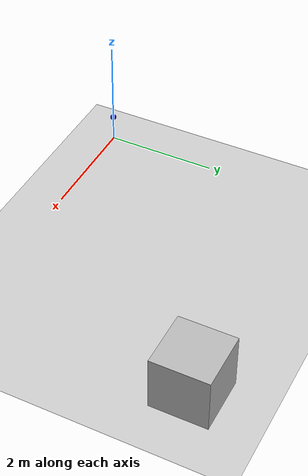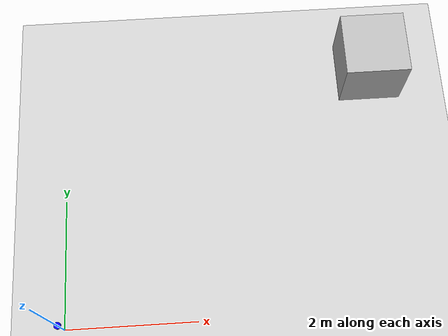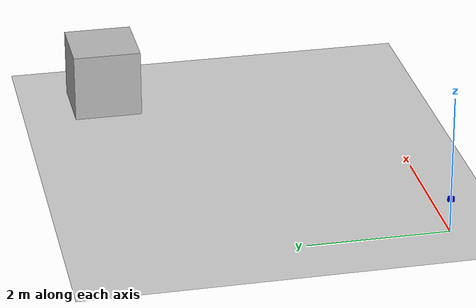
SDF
<?xml version="1.0" ?>
<sdf version="1.10">
  <world name="empty">

    <!-- ================= PHYSICS ================= -->
    <physics name="1ms" type="ignored">
      <max_step_size>0.001</max_step_size>
      <real_time_factor>1</real_time_factor>
      <real_time_update_rate>1000</real_time_update_rate>
    </physics>

    <!-- ================= SYSTEM PLUGINS ================= -->
    <plugin filename="gz-sim-physics-system"
            name="gz::sim::systems::Physics"/>
    <plugin filename="gz-sim-user-commands-system"
            name="gz::sim::systems::UserCommands"/>
    <plugin filename="gz-sim-scene-broadcaster-system"
            name="gz::sim::systems::SceneBroadcaster"/>
    <plugin filename="gz-sim-contact-system"
            name="gz::sim::systems::Contact"/>

    <!-- REQUIRED FOR LIDAR -->
    <plugin filename="gz-sim-sensors-system"
            name="gz::sim::systems::Sensors">
      <render_engine>ogre2</render_engine>
    </plugin>

    <!-- ================= ENVIRONMENT ================= -->
    <gravity>0 0 -9.8</gravity>

    <scene>
      <ambient>0.4 0.4 0.4 1</ambient>
      <background>0.7 0.7 0.7 1</background>
      <shadows>true</shadows>
    </scene>

    <!-- ================= GROUND ================= -->
    <model name="ground_plane">
      <static>true</static>
      <link name="link">
        <collision name="collision">
          <geometry>
            <plane>
              <normal>0 0 1</normal>
              <size>100 100</size>
            </plane>
          </geometry>
        </collision>
        <visual name="visual">
          <geometry>
            <plane>
              <normal>0 0 1</normal>
              <size>100 100</size>
            </plane>
          </geometry>
        </visual>
      </link>
    </model>

    <!-- ================= LIDAR MODEL ================= -->
    <model name="lidar_model">
      <static>true</static>
      <pose>0 0 0.5 0 0 0</pose>

      <link name="lidar_link">

        <sensor name="lidar_sensor" type="gpu_lidar">
          <pose>0 0 0 0 0 0</pose>
          <always_on>true</always_on>
          <update_rate>10</update_rate>
          <visualize>true</visualize>

          <topic>/scan</topic>

          <gpu_lidar>
            <horizontal>
              <samples>720</samples>
              <resolution>1</resolution>
              <min_angle>-3.14159</min_angle>
              <max_angle>3.14159</max_angle>
            </horizontal>
            <vertical>
              <samples>1</samples>
              <resolution>1</resolution>
              <min_angle>0</min_angle>
              <max_angle>0</max_angle>
            </vertical>
            <range>
              <min>0.1</min>
              <max>20.0</max>
              <resolution>0.01</resolution>
            </range>
          </gpu_lidar>
        </sensor>

        <visual name="lidar_visual">
          <geometry>
            <cylinder>
              <radius>0.05</radius>
              <length>0.05</length>
            </cylinder>
          </geometry>
          <material>
            <ambient>0 0 1 1</ambient>
            <diffuse>0 0 1 1</diffuse>
          </material>
        </visual>

      </link>
    </model>

    <!-- ================= BOX ================= -->
    <model name="box">
      <pose>5 4 0.5 0 0 0</pose>
      <link name="link">
        <collision name="collision">
          <geometry>
            <box>
              <size>1 1 1</size>
            </box>
          </geometry>
        </collision>
        <visual name="visual">
          <geometry>
            <box>
              <size>1 1 1</size>
            </box>
          </geometry>
        </visual>
      </link>
    </model>

    <!-- ================= LIGHT ================= -->
    <light name="sun" type="directional">
      <pose>0 0 10 0 0 0</pose>
      <direction>-0.5 0.1 -0.9</direction>
      <diffuse>0.8 0.8 0.8 1</diffuse>
      <specular>0.2 0.2 0.2 1</specular>
    </light>

  </world>
</sdf>
